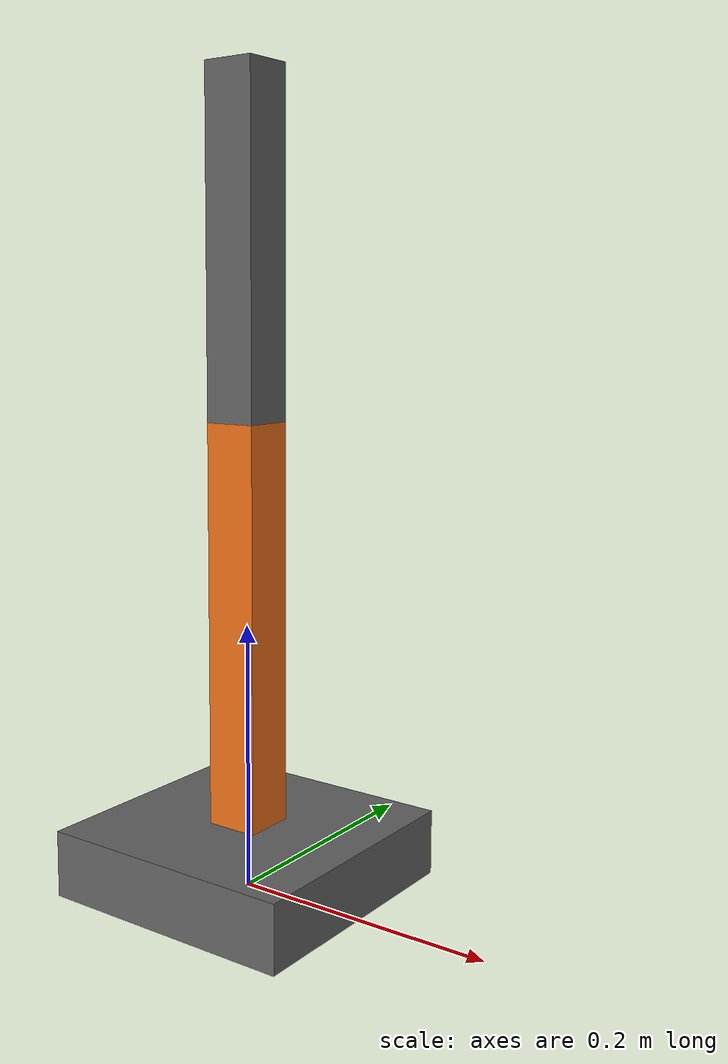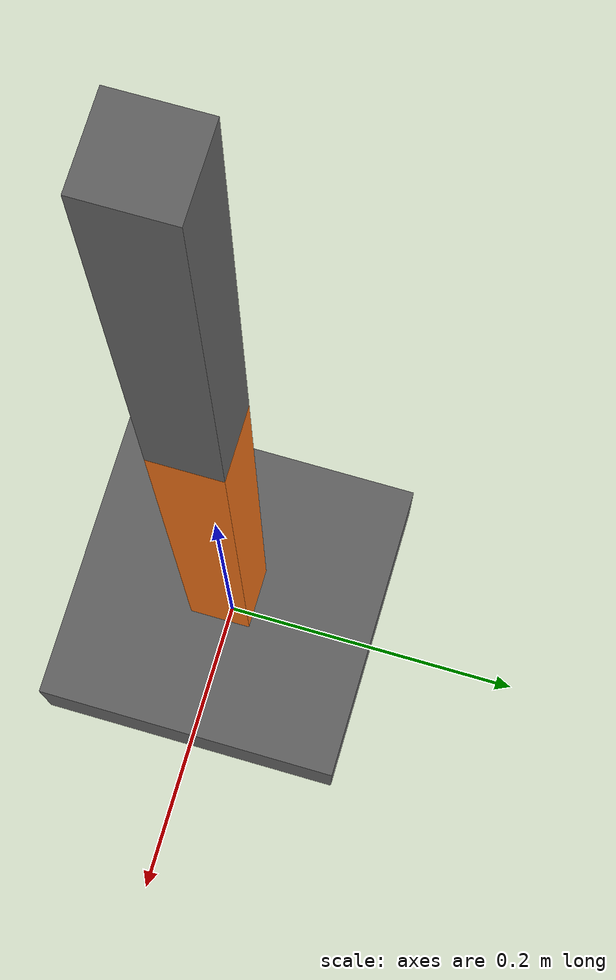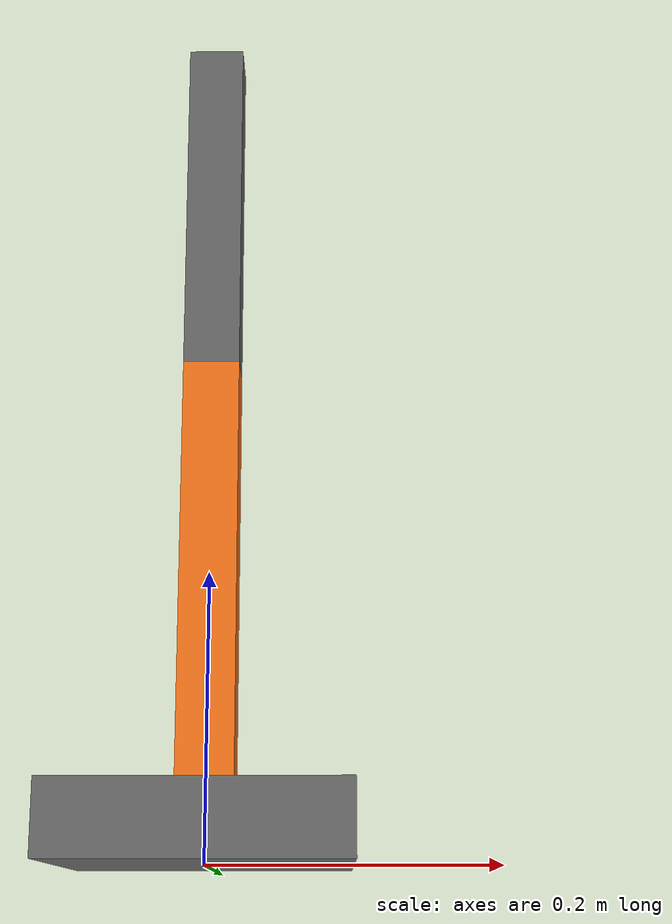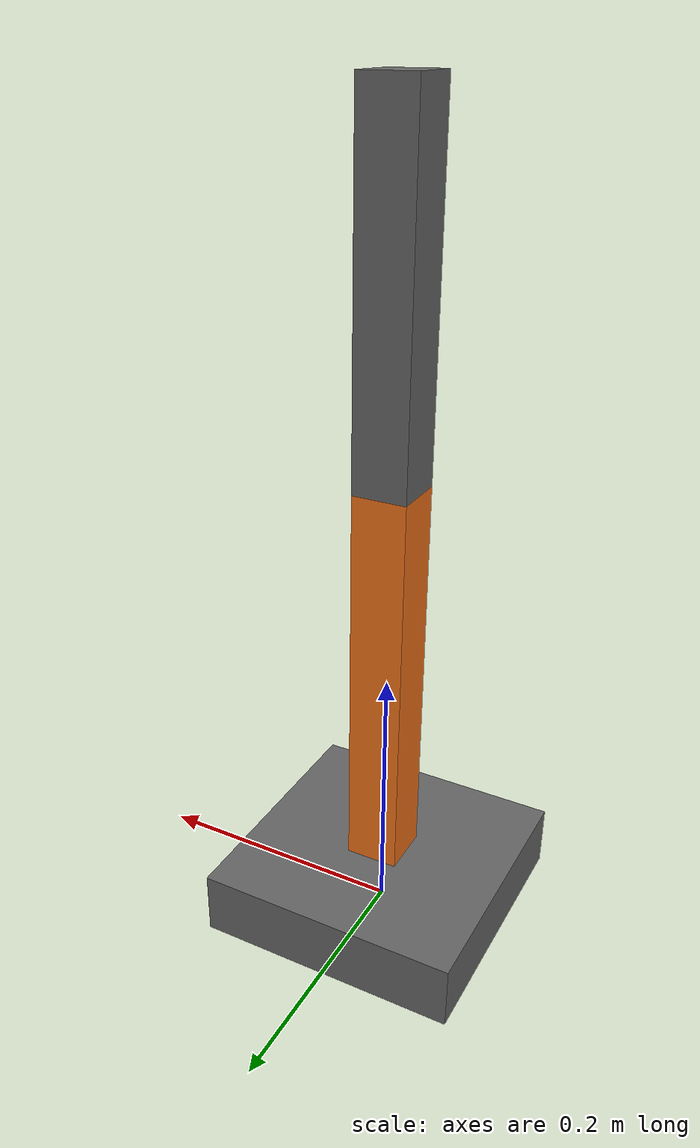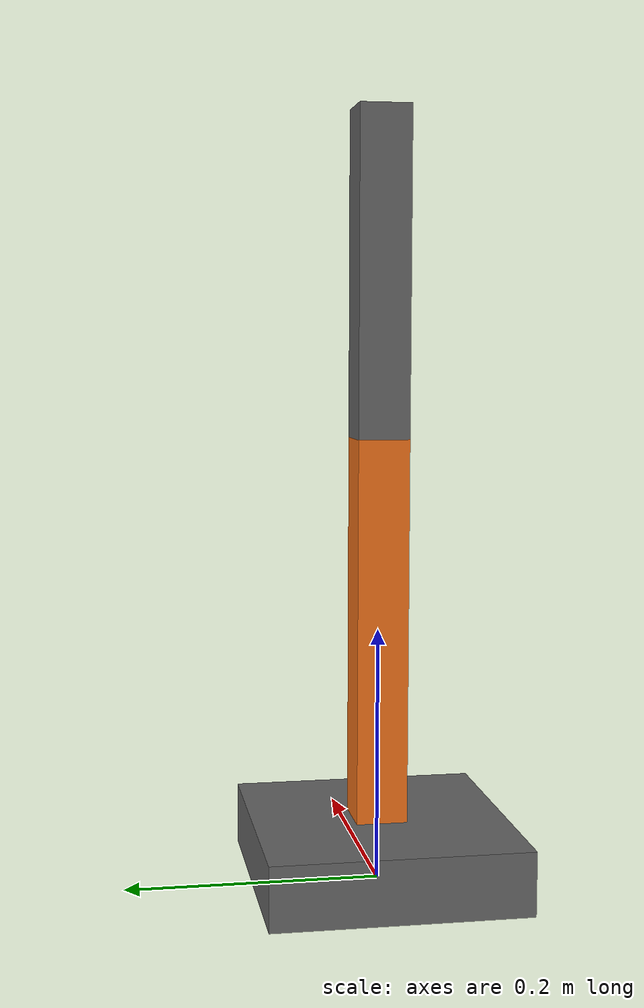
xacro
<?xml version="1.0"?>
<robot xmlns:xacro="http://www.ros.org/wiki/xacro" name="brazo_2gdl_xacro">

  <!-- ===================== Argumento ===================== -->
  <xacro:arg name="color_brazo" default="naranja"/>

  <!-- ===================== Propiedades (variables) ===================== -->
  <xacro:property name="largo_1" value="0.30"/>
  <xacro:property name="largo_2" value="0.25"/>
  <xacro:property name="ancho"   value="0.04"/>
  <xacro:property name="masa_por_metro" value="1.6"/>  <!-- kg/m -->

  <!-- Colores -->
  <material name="gris">   <color rgba="0.4 0.4 0.4 1"/></material>
  <material name="naranja"><color rgba="0.95 0.45 0.1 1"/></material>
  <material name="azul">   <color rgba="0.1 0.4 0.9 1"/></material>

  <xacro:macro name="barra" params="nombre largo color">
    <xacro:property name="m" value="${masa_por_metro * largo}"/>
    <link name="${nombre}">
      <visual>
        <origin xyz="0 0 ${largo/2}"/>
        <geometry><box size="${ancho} ${ancho} ${largo}"/></geometry>
        <material name="${color}"/>
      </visual>
      <collision>
        <origin xyz="0 0 ${largo/2}"/>
        <geometry><box size="${ancho} ${ancho} ${largo}"/></geometry>
      </collision>
      <inertial>
        <origin xyz="0 0 ${largo/2}"/>
        <mass value="${m}"/>
        <inertia ixx="${m*(ancho*ancho + largo*largo)/12}" ixy="0" ixz="0"
                 iyy="${m*(ancho*ancho + largo*largo)/12}" iyz="0"
                 izz="${m*(2*ancho*ancho)/12}"/>
      </inertial>
    </link>
  </xacro:macro>

  <!-- ===================== Macro de una articulación rotativa en Y ===================== -->
  <xacro:macro name="bisagra" params="nombre padre hijo z limite">
    <joint name="${nombre}" type="revolute">
      <parent link="${padre}"/>
      <child link="${hijo}"/>
      <origin xyz="0 0 ${z}"/>
      <axis xyz="0 1 0"/>
      <limit lower="${-limite}" upper="${limite}" velocity="1.0" effort="10"/>
    </joint>
  </xacro:macro>

  <!-- ===================== El robot, montado con las macros ===================== -->
  <link name="world"/>

  <link name="base_link">
    <visual>
      <origin xyz="0 0 0.025"/>
      <geometry><box size="0.2 0.2 0.05"/></geometry>
      <material name="gris"/>
    </visual>
  </link>
  <joint name="base_fija" type="fixed">
    <parent link="world"/>
    <child link="base_link"/>
  </joint>

  <xacro:bisagra nombre="joint_1" padre="base_link" hijo="eslabon_1" z="0.05"      limite="${pi/2}"/>
  <xacro:barra   nombre="eslabon_1" largo="${largo_1}" color="$(arg color_brazo)"/>

  <xacro:bisagra nombre="joint_2" padre="eslabon_1" hijo="eslabon_2" z="${largo_1}" limite="${0.8*pi}"/>
  <xacro:barra   nombre="eslabon_2" largo="${largo_2}" color="gris"/>

  <!-- Ejemplo de condicional: la punta solo existe si el brazo es largo -->
  <xacro:if value="${largo_2 > 0.1}">
    <joint name="punta_fija" type="fixed">
      <parent link="eslabon_2"/>
      <child link="punta"/>
      <origin xyz="0 0 ${largo_2}"/>
    </joint>
    <link name="punta"/>
  </xacro:if>

</robot>
